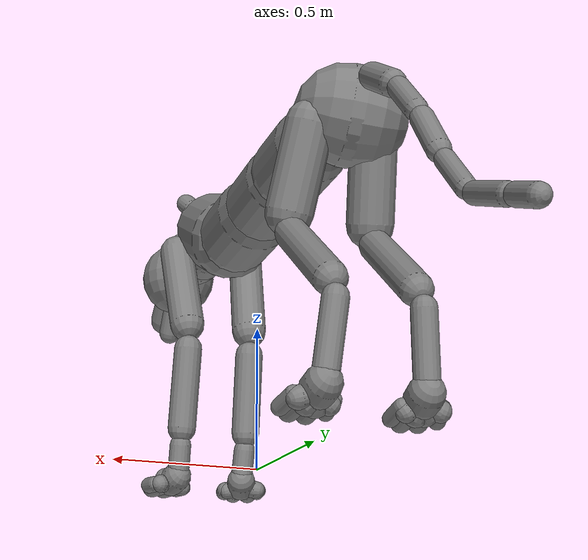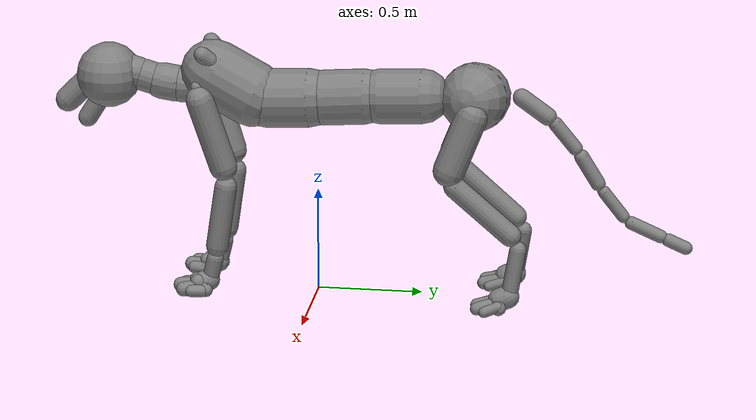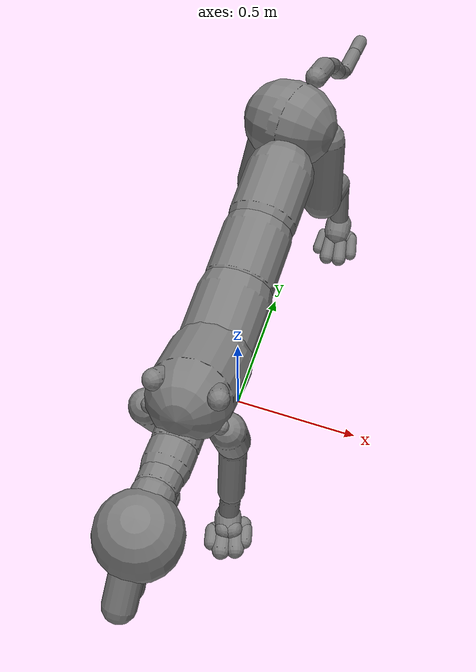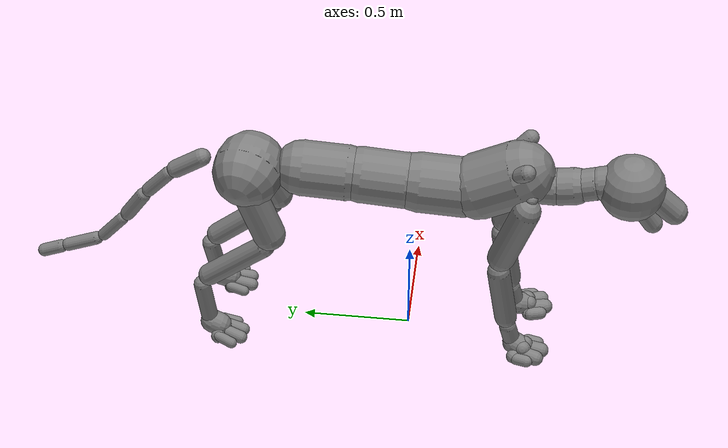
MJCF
<mujoco model="tiger">
  <compiler angle="radian" />
  <option timestep="0.016667" />
  <default>
    <joint limited="true" armature="0.202781" frictionloss="0.054979" />
    <geom type="capsule" density="1000.0" contype="1" conaffinity="1" friction="1.0 0.05 0.05" />
    <motor ctrllimited="true" />
  </default>
  <worldbody>
    <body name="RigPelvis" pos="-3.71397e-09 0.737232 0.989311">
      <freejoint name="root" />
      <geom name="g_RigPelvis" fromto="-0.012497 0.00273413 -0.00190671 -0.0520702 0.0113922 -0.00794469" size="0.163021" density="1540.0" />
      <body name="RigLBLeg1" pos="0.104141 0.0227845 -0.0158897">
        <joint name="RigLBLeg1_x" type="hinge" axis="1 0 0" pos="0 0 0" range="-1.1186 1.1823" />
        <joint name="RigLBLeg1_y" type="hinge" axis="0 1 0" pos="0 0 0" range="-0.4540 0.7477" />
        <joint name="RigLBLeg1_z" type="hinge" axis="0 0 1" pos="0 0 0" range="-0.4452 0.4915" />
        <geom name="g_RigLBLeg1" fromto="0.00450067 -0.0159535 -0.0412049 0.0330048 -0.116988 -0.302166" size="0.0766259" density="1540.0" />
        <body name="RigLBLeg2" pos="0.0375057 -0.132944 -0.343369">
          <joint name="RigLBLeg2_x" type="hinge" axis="1 0 0" pos="0 0 0" range="-0.6659 1.8467" />
          <joint name="RigLBLeg2_y" type="hinge" axis="0 1 0" pos="0 0 0" range="-0.1246 0.2644" />
          <joint name="RigLBLeg2_z" type="hinge" axis="0 0 1" pos="0 0 0" range="-0.1422 0.1201" />
          <geom name="g_RigLBLeg2" fromto="-0.00105493 0.04206 -0.0367531 -0.00773596 0.308443 -0.269521" size="0.0517676" density="1540.0" />
          <body name="RigLBLeg3" pos="-0.00879087 0.350499 -0.306273">
            <joint name="RigLBLeg3_x" type="hinge" axis="1 0 0" pos="0 0 0" range="-1.7965 0.5939" />
            <joint name="RigLBLeg3_y" type="hinge" axis="0 1 0" pos="0 0 0" range="-0.1506 0.2254" />
            <joint name="RigLBLeg3_z" type="hinge" axis="0 0 1" pos="0 0 0" range="-0.2989 0.1909" />
            <geom name="g_RigLBLeg3" fromto="0.00270917 -0.00503764 -0.0313317 0.0198671 -0.0369425 -0.229765" size="0.0399405" density="1540.0" />
            <body name="RigLBLegAnkle" pos="0.0225769 -0.0419799 -0.2611">
              <joint name="RigLBLegAnkle_x" type="hinge" axis="1 0 0" pos="0 0 0" range="-0.4182 2.2773" />
              <joint name="RigLBLegAnkle_y" type="hinge" axis="0 1 0" pos="0 0 0" range="-0.5642 0.5446" />
              <joint name="RigLBLegAnkle_z" type="hinge" axis="0 0 1" pos="0 0 0" range="-0.9221 1.0499" />
              <geom name="g_RigLBLegAnkle" fromto="0.000560647 -0.00601446 -0.00242466 0.00411145 -0.044106 -0.0177806" size="0.0554814" density="1540.0" />
              <body name="RigLBLegDigit11" pos="0.0046721 -0.0501207 -0.0202055">
                <joint name="RigLBLegDigit11_x" type="hinge" axis="1 0 0" pos="0 0 0" range="-1.2346 0.8098" />
                <joint name="RigLBLegDigit11_y" type="hinge" axis="0 1 0" pos="0 0 0" range="-0.3347 0.3448" />
                <joint name="RigLBLegDigit11_z" type="hinge" axis="0 0 1" pos="0 0 0" range="-0.4274 0.4434" />
                <geom name="g_RigLBLegDigit11" fromto="0 0 0 -0.0425535 -0.00753521 -0.0275245" size="0.0324687" density="1540.0" />
                <body name="RigLBLegDigit12" pos="-0.0555421 -0.00783834 -0.0133306">
                  <joint name="RigLBLegDigit12_x" type="hinge" axis="1 0 0" pos="0 0 0" range="-0.4513 1.3530" />
                  <joint name="RigLBLegDigit12_y" type="hinge" axis="0 1 0" pos="0 0 0" range="-0.2023 0.1290" />
                  <joint name="RigLBLegDigit12_z" type="hinge" axis="0 0 1" pos="0 0 0" range="-0.2549 0.1719" />
                  <geom name="g_RigLBLegDigit12" fromto="0 0 0 -0.0040532 -0.064185 -0.0215236" size="0.0248258" density="1540.0" />
                </body>
              </body>
              <body name="RigLBLegDigit21" pos="0.0046721 -0.0501199 -0.0202055">
                <joint name="RigLBLegDigit21_x" type="hinge" axis="1 0 0" pos="0 0 0" range="-1.2346 0.9774" />
                <joint name="RigLBLegDigit21_y" type="hinge" axis="0 1 0" pos="0 0 0" range="-0.2358 0.1890" />
                <joint name="RigLBLegDigit21_z" type="hinge" axis="0 0 1" pos="0 0 0" range="-0.4272 0.4171" />
                <geom name="g_RigLBLegDigit21" fromto="0 0 0 -0.00578945 -0.0190037 -0.0245509" size="0.0425664" density="1540.0" />
                <body name="RigLBLegDigit22" pos="-0.0180692 -0.025354 -0.0129026">
                  <joint name="RigLBLegDigit22_x" type="hinge" axis="1 0 0" pos="0 0 0" range="-0.4534 1.3547" />
                  <joint name="RigLBLegDigit22_y" type="hinge" axis="0 1 0" pos="0 0 0" range="-0.1014 0.1248" />
                  <joint name="RigLBLegDigit22_z" type="hinge" axis="0 0 1" pos="0 0 0" range="-0.1390 0.0873" />
                  <geom name="g_RigLBLegDigit22" fromto="0 0 0 0.00536271 -0.077672 -0.022251" size="0.0309904" density="1540.0" />
                </body>
              </body>
              <body name="RigLBLegDigit31" pos="0.0046721 -0.0501207 -0.0202055">
                <joint name="RigLBLegDigit31_x" type="hinge" axis="1 0 0" pos="0 0 0" range="-1.2346 0.8888" />
                <joint name="RigLBLegDigit31_y" type="hinge" axis="0 1 0" pos="0 0 0" range="-0.1873 0.4675" />
                <joint name="RigLBLegDigit31_z" type="hinge" axis="0 0 1" pos="0 0 0" range="-0.4282 0.4236" />
                <geom name="g_RigLBLegDigit31" fromto="0 0 0 0.0187042 -0.0158245 -0.0222241" size="0.0425943" density="1540.0" />
                <body name="RigLBLegDigit32" pos="0.0248476 -0.0240667 -0.0124635">
                  <joint name="RigLBLegDigit32_x" type="hinge" axis="1 0 0" pos="0 0 0" range="-0.4477 1.3498" />
                  <joint name="RigLBLegDigit32_y" type="hinge" axis="0 1 0" pos="0 0 0" range="-0.1543 0.2717" />
                  <joint name="RigLBLegDigit32_z" type="hinge" axis="0 0 1" pos="0 0 0" range="-0.2185 0.1205" />
                  <geom name="g_RigLBLegDigit32" fromto="0 0 0 0.0152426 -0.0742541 -0.0210748" size="0.0307951" density="1540.0" />
                </body>
              </body>
              <body name="RigLBLegDigit41" pos="0.00467202 -0.0501199 -0.0202055">
                <joint name="RigLBLegDigit41_x" type="hinge" axis="1 0 0" pos="0 0 0" range="-1.2346 0.7396" />
                <joint name="RigLBLegDigit41_y" type="hinge" axis="0 1 0" pos="0 0 0" range="-0.1873 0.4945" />
                <joint name="RigLBLegDigit41_z" type="hinge" axis="0 0 1" pos="0 0 0" range="-0.4282 0.4666" />
                <geom name="g_RigLBLegDigit41" fromto="0 0 0 0.0561866 0.00752917 -0.0207512" size="0.0340959" density="1540.0" />
                <body name="RigLBLegDigit42" pos="0.0658821 0.00318319 -0.0102848">
                  <joint name="RigLBLegDigit42_x" type="hinge" axis="1 0 0" pos="0 0 0" range="-0.4445 1.3470" />
                  <joint name="RigLBLegDigit42_y" type="hinge" axis="0 1 0" pos="0 0 0" range="-0.1704 0.3149" />
                  <joint name="RigLBLegDigit42_z" type="hinge" axis="0 0 1" pos="0 0 0" range="-0.2520 0.2513" />
                  <geom name="g_RigLBLegDigit42" fromto="0 0 0 0.0154778 -0.0625349 -0.023162" size="0.0257556" density="1540.0" />
                </body>
              </body>
            </body>
          </body>
        </body>
      </body>
      <body name="RigSpine1" pos="-4.10818e-14 -0.204483 6.56961e-08">
        <joint name="RigSpine1_x" type="hinge" axis="1 0 0" pos="0 0 0" range="-0.4792 0.4654" />
        <joint name="RigSpine1_y" type="hinge" axis="0 1 0" pos="0 0 0" range="-0.2512 0.2512" />
        <joint name="RigSpine1_z" type="hinge" axis="0 0 1" pos="0 0 0" range="-0.2732 0.3115" />
        <geom name="g_RigSpine1" fromto="-3.13256e-09 -0.0324054 -0.001533 -2.29722e-08 -0.237635 -0.0112424" size="0.130527" density="1540.0" />
        <body name="RigSpine2" pos="-2.6104e-08 -0.270047 -0.0127751">
          <joint name="RigSpine2_x" type="hinge" axis="1 0 0" pos="0 0 0" range="-0.3832 0.4203" />
          <joint name="RigSpine2_y" type="hinge" axis="0 1 0" pos="0 0 0" range="-0.3709 0.3709" />
          <joint name="RigSpine2_z" type="hinge" axis="0 0 1" pos="0 0 0" range="-0.3928 0.3904" />
          <geom name="g_RigSpine2" fromto="-2.03054e-09 -0.0323555 -0.00236482 -1.48908e-08 -0.237274 -0.0173424" size="0.13139" density="1000.0" />
          <body name="RigSpine3" pos="-1.69213e-08 -0.269624 -0.0197069">
            <joint name="RigSpine3_x" type="hinge" axis="1 0 0" pos="0 0 0" range="-0.2325 0.4305" />
            <joint name="RigSpine3_y" type="hinge" axis="0 1 0" pos="0 0 0" range="-0.3755 0.3755" />
            <joint name="RigSpine3_z" type="hinge" axis="0 0 1" pos="0 0 0" range="-0.4491 0.4485" />
            <geom name="g_RigSpine3" fromto="7.46807e-09 -0.0324054 -0.00153378 5.47654e-08 -0.237635 -0.0112476" size="0.140864" density="1000.0" />
            <body name="RigChest" pos="6.22336e-08 -0.270047 -0.012782">
              <joint name="RigChest_x" type="hinge" axis="1 0 0" pos="0 0 0" range="-0.3344 0.4872" />
              <joint name="RigChest_y" type="hinge" axis="0 1 0" pos="0 0 0" range="-0.2445 0.2445" />
              <joint name="RigChest_z" type="hinge" axis="0 0 1" pos="0 0 0" range="-0.3529 0.3529" />
              <geom name="g_RigChest" fromto="-1.76575e-10 -0.0301382 0.0164624 -1.29491e-09 -0.221008 0.120725" size="0.155617" density="1000.0" />
              <body name="RigNeck1" pos="-1.53739e-08 -0.294347 0.0522614">
                <joint name="RigNeck1_x" type="hinge" axis="1 0 0" pos="0 0 0" range="-0.6511 0.5810" />
                <joint name="RigNeck1_y" type="hinge" axis="0 1 0" pos="0 0 0" range="-0.1951 0.2132" />
                <joint name="RigNeck1_z" type="hinge" axis="0 0 1" pos="0 0 0" range="-0.4523 0.8165" />
                <geom name="g_RigNeck1" fromto="-2.93951e-08 -0.0111434 4.86388e-06 -2.15557e-07 -0.0817158 3.56681e-05" size="0.0867253" density="1000.0" />
                <body name="RigNeck2" pos="-2.44955e-07 -0.09286 4.05325e-05">
                  <joint name="RigNeck2_x" type="hinge" axis="1 0 0" pos="0 0 0" range="-0.3444 0.5429" />
                  <joint name="RigNeck2_y" type="hinge" axis="0 1 0" pos="0 0 0" range="-0.2646 0.2646" />
                  <joint name="RigNeck2_z" type="hinge" axis="0 0 1" pos="0 0 0" range="-0.3602 0.3770" />
                  <geom name="g_RigNeck2" fromto="-2.73181e-08 -0.0111167 0.00173338 -2.00333e-07 -0.0815255 0.0127114" size="0.0867253" density="1000.0" />
                  <body name="RigNeck3" pos="-2.27655e-07 -0.0926448 0.0144448">
                    <joint name="RigNeck3_x" type="hinge" axis="1 0 0" pos="0 0 0" range="-0.3421 0.4979" />
                    <joint name="RigNeck3_y" type="hinge" axis="0 1 0" pos="0 0 0" range="-0.2145 0.2145" />
                    <joint name="RigNeck3_z" type="hinge" axis="0 0 1" pos="0 0 0" range="-0.2979 0.2867" />
                    <geom name="g_RigNeck3" fromto="-2.63812e-08 -0.0113104 0.00322582 -1.93461e-07 -0.0829403 0.0236559" size="0.0761227" density="1000.0" />
                    <body name="RigNeck4" pos="-2.19846e-07 -0.0942467 0.0268816">
                      <joint name="RigNeck4_x" type="hinge" axis="1 0 0" pos="0 0 0" range="-0.7504 0.5229" />
                      <joint name="RigNeck4_y" type="hinge" axis="0 1 0" pos="0 0 0" range="-0.3846 0.3846" />
                      <joint name="RigNeck4_z" type="hinge" axis="0 0 1" pos="0 0 0" range="-0.4534 0.4534" />
                      <geom name="g_RigNeck4" fromto="3.32665e-07 -0.00992668 0.00276988 2.43955e-06 -0.0727932 0.0203123" size="0.0774232" density="1000.0" />
                      <body name="RigHead" pos="2.7722e-06 -0.0827199 0.0230824">
                        <joint name="RigHead_x" type="hinge" axis="1 0 0" pos="0 0 0" range="-0.8230 0.5439" />
                        <joint name="RigHead_y" type="hinge" axis="0 1 0" pos="0 0 0" range="-0.3970 0.3970" />
                        <joint name="RigHead_z" type="hinge" axis="0 0 1" pos="0 0 0" range="-0.5157 0.5157" />
                        <geom name="g_RigHead" type="sphere" pos="-2.07987e-06 -0.0685405 -0.0323949" size="0.155221" density="838.9" />
                        <geom name="g_RigHead_snout" fromto="-2.07987e-06 -0.102943 0.00386742 -2.07987e-06 -0.27134 -0.164529" size="0.0604372" density="838.9" />
                        <body name="RigJaw1" pos="-2.72071e-08 -0.0387069 -0.0701419">
                          <joint name="RigJaw1_x" type="hinge" axis="1 0 0" pos="0 0 0" range="-0.4014 0.6986" />
                          <joint name="RigJaw1_y" type="hinge" axis="0 1 0" pos="0 0 0" range="-0.1388 0.1388" />
                          <joint name="RigJaw1_z" type="hinge" axis="0 0 1" pos="0 0 0" range="-0.1091 0.1091" />
                          <geom name="g_RigJaw1" fromto="-2.05266e-06 -0.0642367 -0.0608122 -2.05266e-06 -0.138701 -0.179979" size="0.0464902" density="838.9" />
                        </body>
                      </body>
                    </body>
                  </body>
                </body>
              </body>
              <body name="RigLFLegCollarbone" pos="-0.0347003 -0.277805 0.126769">
                <joint name="RigLFLegCollarbone_x" type="hinge" axis="1 0 0" pos="0 0 0" range="-0.2925 0.2681" />
                <joint name="RigLFLegCollarbone_y" type="hinge" axis="0 1 0" pos="0 0 0" range="-0.2371 0.6865" />
                <joint name="RigLFLegCollarbone_z" type="hinge" axis="0 0 1" pos="0 0 0" range="-0.4193 0.3521" />
                <geom name="g_RigLFLegCollarbone" fromto="0.022087 6.21148e-06 -0.00618755 0.161971 4.55509e-05 -0.0453752" size="0.0297135" density="1000.5" />
                <body name="RigLFLeg1" pos="0.184058 5.17627e-05 -0.051563">
                  <joint name="RigLFLeg1_x" type="hinge" axis="1 0 0" pos="0 0 0" range="-0.6847 0.9281" />
                  <joint name="RigLFLeg1_y" type="hinge" axis="0 1 0" pos="0 0 0" range="-0.8833 0.4380" />
                  <joint name="RigLFLeg1_z" type="hinge" axis="0 0 1" pos="0 0 0" range="-0.5692 0.5046" />
                  <geom name="g_RigLFLeg1" fromto="-0.00311543 0.0165338 -0.0525524 -0.0228465 0.12125 -0.385381" size="0.0660645" density="1000.5" />
                  <body name="RigLFLeg2" pos="-0.0259619 0.137783 -0.437934">
                    <joint name="RigLFLeg2_x" type="hinge" axis="1 0 0" pos="0 0 0" range="-1.9085 0.4150" />
                    <joint name="RigLFLeg2_y" type="hinge" axis="0 1 0" pos="0 0 0" range="-0.2753 0.1353" />
                    <joint name="RigLFLeg2_z" type="hinge" axis="0 0 1" pos="0 0 0" range="-0.2342 0.1285" />
                    <geom name="g_RigLFLeg2" fromto="0.000570525 -0.00708669 -0.04754 0.00418386 -0.0519686 -0.34863" size="0.0533189" density="1000.5" />
                    <body name="RigLFLeg3" pos="0.00475435 -0.0590554 -0.396171">
                      <joint name="RigLFLeg3_x" type="hinge" axis="1 0 0" pos="0 0 0" range="-0.3454 2.3444" />
                      <joint name="RigLFLeg3_y" type="hinge" axis="0 1 0" pos="0 0 0" range="-0.2482 0.8543" />
                      <joint name="RigLFLeg3_z" type="hinge" axis="0 0 1" pos="0 0 0" range="-0.3979 0.8034" />
                      <geom name="g_RigLFLeg3" fromto="-0.000264398 -0.00367686 -0.0150734 -0.00193892 -0.0269634 -0.110538" size="0.0404029" density="1000.5" />
                      <body name="RigLFLegAnkle" pos="-0.00220336 -0.0306402 -0.125607">
                        <joint name="RigLFLegAnkle_x" type="hinge" axis="1 0 0" pos="0 0 0" range="-0.3116 2.0357" />
                        <joint name="RigLFLegAnkle_y" type="hinge" axis="0 1 0" pos="0 0 0" range="-0.4435 1.0126" />
                        <joint name="RigLFLegAnkle_z" type="hinge" axis="0 0 1" pos="0 0 0" range="-0.8155 0.7421" />
                        <geom name="g_RigLFLegAnkle" fromto="0.00196544 -0.00590071 -0.00230652 0.0144138 -0.0432724 -0.0169144" size="0.0529802" density="1000.5" />
                        <body name="RigLFLegDigit11" pos="0.0163788 -0.0491726 -0.0192196">
                          <joint name="RigLFLegDigit11_x" type="hinge" axis="1 0 0" pos="0 0 0" range="-1.8232 0.4278" />
                          <joint name="RigLFLegDigit11_y" type="hinge" axis="0 1 0" pos="0 0 0" range="-0.6347 0.5256" />
                          <joint name="RigLFLegDigit11_z" type="hinge" axis="0 0 1" pos="0 0 0" range="-0.4580 0.1848" />
                          <geom name="g_RigLFLegDigit11" fromto="0 0 0 -0.0507717 -0.0140045 -0.0140357" size="0.0310182" density="1000.5" />
                          <body name="RigLFLegDigit12" pos="-0.0560544 -0.0222669 -0.0107197">
                            <joint name="RigLFLegDigit12_x" type="hinge" axis="1 0 0" pos="0 0 0" range="-0.3822 2.8648" />
                            <joint name="RigLFLegDigit12_y" type="hinge" axis="0 1 0" pos="0 0 0" range="-0.3298 0.7237" />
                            <joint name="RigLFLegDigit12_z" type="hinge" axis="0 0 1" pos="0 0 0" range="-0.5305 0.4206" />
                            <geom name="g_RigLFLegDigit12" fromto="0 0 0 0.0113395 -0.0476826 0.000772613" size="0.0308695" density="1000.5" />
                          </body>
                        </body>
                        <body name="RigLFLegDigit21" pos="0.0163788 -0.0491726 -0.0192196">
                          <joint name="RigLFLegDigit21_x" type="hinge" axis="1 0 0" pos="0 0 0" range="-1.8151 0.4265" />
                          <joint name="RigLFLegDigit21_y" type="hinge" axis="0 1 0" pos="0 0 0" range="-0.5857 0.1982" />
                          <joint name="RigLFLegDigit21_z" type="hinge" axis="0 0 1" pos="0 0 0" range="-0.4576 0.1594" />
                          <geom name="g_RigLFLegDigit21" fromto="0 0 0 -0.0101205 -0.0102738 0.0141711" size="0.039247" density="1000.5" />
                          <body name="RigLFLegDigit22" pos="-0.0139428 -0.0234019 -0.00987414">
                            <joint name="RigLFLegDigit22_x" type="hinge" axis="1 0 0" pos="0 0 0" range="-0.3980 2.8730" />
                            <joint name="RigLFLegDigit22_y" type="hinge" axis="0 1 0" pos="0 0 0" range="-0.1984 0.6366" />
                            <joint name="RigLFLegDigit22_z" type="hinge" axis="0 0 1" pos="0 0 0" range="-0.5772 0.2824" />
                            <geom name="g_RigLFLegDigit22" fromto="0 0 0 0.0135018 -0.066047 0.000842824" size="0.0363274" density="1000.5" />
                          </body>
                        </body>
                        <body name="RigLFLegDigit31" pos="0.0163797 -0.0491726 -0.0192239">
                          <joint name="RigLFLegDigit31_x" type="hinge" axis="1 0 0" pos="0 0 0" range="-1.8151 0.4265" />
                          <joint name="RigLFLegDigit31_y" type="hinge" axis="0 1 0" pos="0 0 0" range="-0.4083 0.1982" />
                          <joint name="RigLFLegDigit31_z" type="hinge" axis="0 0 1" pos="0 0 0" range="-0.4589 0.1594" />
                          <geom name="g_RigLFLegDigit31" fromto="0 0 0 0.0166381 -0.00115699 0.0135998" size="0.0408463" density="1000.5" />
                          <body name="RigLFLegDigit32" pos="0.0307556 -0.00640126 -0.0100756">
                            <joint name="RigLFLegDigit32_x" type="hinge" axis="1 0 0" pos="0 0 0" range="-0.3736 2.8802" />
                            <joint name="RigLFLegDigit32_y" type="hinge" axis="0 1 0" pos="0 0 0" range="-0.1601 0.7878" />
                            <joint name="RigLFLegDigit32_z" type="hinge" axis="0 0 1" pos="0 0 0" range="-0.7127 0.2741" />
                            <geom name="g_RigLFLegDigit32" fromto="0 0 0 0.0201025 -0.0608005 -0.00113838" size="0.0363553" density="1000.5" />
                          </body>
                        </body>
                        <body name="RigLFLegDigit41" pos="0.0163788 -0.0491726 -0.0192196">
                          <joint name="RigLFLegDigit41_x" type="hinge" axis="1 0 0" pos="0 0 0" range="-1.8203 0.4265" />
                          <joint name="RigLFLegDigit41_y" type="hinge" axis="0 1 0" pos="0 0 0" range="-0.4083 0.1982" />
                          <joint name="RigLFLegDigit41_z" type="hinge" axis="0 0 1" pos="0 0 0" range="-0.4620 0.1594" />
                          <geom name="g_RigLFLegDigit41" fromto="0 0 0 0.0489029 0.0399905 -0.0131114" size="0.0325989" density="1000.5" />
                          <body name="RigLFLegDigit42" pos="0.0623284 0.0232925 -0.0126951">
                            <joint name="RigLFLegDigit42_x" type="hinge" axis="1 0 0" pos="0 0 0" range="-0.3282 2.8916" />
                            <joint name="RigLFLegDigit42_y" type="hinge" axis="0 1 0" pos="0 0 0" range="-0.1784 0.8231" />
                            <joint name="RigLFLegDigit42_z" type="hinge" axis="0 0 1" pos="0 0 0" range="-0.9001 0.2935" />
                            <geom name="g_RigLFLegDigit42" fromto="0 0 0 0.0124786 -0.0487053 0.00214576" size="0.0296328" density="1000.5" />
                          </body>
                        </body>
                      </body>
                    </body>
                  </body>
                </body>
              </body>
              <body name="RigRFLegCollarbone" pos="0.0347011 -0.277805 0.126769">
                <joint name="RigRFLegCollarbone_x" type="hinge" axis="1 0 0" pos="0 0 0" range="-0.2925 0.2681" />
                <joint name="RigRFLegCollarbone_y" type="hinge" axis="0 1 0" pos="0 0 0" range="-0.6865 0.2371" />
                <joint name="RigRFLegCollarbone_z" type="hinge" axis="0 0 1" pos="0 0 0" range="-0.3521 0.4193" />
                <geom name="g_RigRFLegCollarbone" fromto="-0.022087 6.18134e-06 -0.00618728 -0.161971 4.53304e-05 -0.0453735" size="0.0297135" density="1000.5" />
                <body name="RigRFLeg1" pos="-0.184058 5.15113e-05 -0.0515612">
                  <joint name="RigRFLeg1_x" type="hinge" axis="1 0 0" pos="0 0 0" range="-0.6847 0.9281" />
                  <joint name="RigRFLeg1_y" type="hinge" axis="0 1 0" pos="0 0 0" range="-0.4380 0.8833" />
                  <joint name="RigRFLeg1_z" type="hinge" axis="0 0 1" pos="0 0 0" range="-0.5046 0.5692" />
                  <geom name="g_RigRFLeg1" fromto="0.0030896 0.0165373 -0.0525524 0.022657 0.121276 -0.385381" size="0.0660829" density="1000.5" />
                  <body name="RigRFLeg2" pos="0.0257466 0.137809 -0.437934">
                    <joint name="RigRFLeg2_x" type="hinge" axis="1 0 0" pos="0 0 0" range="-1.9085 0.4150" />
                    <joint name="RigRFLeg2_y" type="hinge" axis="0 1 0" pos="0 0 0" range="-0.1353 0.2753" />
                    <joint name="RigRFLeg2_z" type="hinge" axis="0 0 1" pos="0 0 0" range="-0.1285 0.2342" />
                    <geom name="g_RigRFLeg2" fromto="-0.000551692 -0.0070891 -0.04754 -0.00404575 -0.0519866 -0.34863" size="0.0533189" density="1000.5" />
                    <body name="RigRFLeg3" pos="-0.00459745 -0.059076 -0.396162">
                      <joint name="RigRFLeg3_x" type="hinge" axis="1 0 0" pos="0 0 0" range="-0.3622 2.3392" />
                      <joint name="RigRFLeg3_y" type="hinge" axis="0 1 0" pos="0 0 0" range="-0.8543 0.2375" />
                      <joint name="RigRFLeg3_z" type="hinge" axis="0 0 1" pos="0 0 0" range="-0.8253 0.4073" />
                      <geom name="g_RigRFLeg3" fromto="0.00027585 -0.00367884 -0.0150726 0.00202287 -0.026978 -0.110529" size="0.0403968" density="1000.5" />
                      <body name="RigRFLegAnkle" pos="0.00229877 -0.0306566 -0.125599">
                        <joint name="RigRFLegAnkle_x" type="hinge" axis="1 0 0" pos="0 0 0" range="-0.3116 2.0267" />
                        <joint name="RigRFLegAnkle_y" type="hinge" axis="0 1 0" pos="0 0 0" range="-0.9493 0.4306" />
                        <joint name="RigRFLegAnkle_z" type="hinge" axis="0 0 1" pos="0 0 0" range="-0.7768 0.8115" />
                        <geom name="g_RigRFLegAnkle" fromto="-0.00196759 -0.00589994 -0.00230669 -0.0144293 -0.0432664 -0.0169153" size="0.0529895" density="1000.5" />
                        <body name="RigRFLegDigit11" pos="-0.0163969 -0.0491666 -0.0192213">
                          <joint name="RigRFLegDigit11_x" type="hinge" axis="1 0 0" pos="0 0 0" range="-1.8232 0.4278" />
                          <joint name="RigRFLegDigit11_y" type="hinge" axis="0 1 0" pos="0 0 0" range="-0.5256 0.6346" />
                          <joint name="RigRFLegDigit11_z" type="hinge" axis="0 0 1" pos="0 0 0" range="-0.1848 0.4580" />
                          <geom name="g_RigRFLegDigit11" fromto="0 0 0 0.0507177 -0.0139983 -0.0140286" size="0.0310275" density="1000.5" />
                          <body name="RigRFLegDigit12" pos="0.0560544 -0.0222669 -0.0107197">
                            <joint name="RigRFLegDigit12_x" type="hinge" axis="1 0 0" pos="0 0 0" range="-0.3752 2.8290" />
                            <joint name="RigRFLegDigit12_y" type="hinge" axis="0 1 0" pos="0 0 0" range="-0.7024 0.3298" />
                            <joint name="RigRFLegDigit12_z" type="hinge" axis="0 0 1" pos="0 0 0" range="-0.3150 0.5212" />
                            <geom name="g_RigRFLegDigit12" fromto="0 0 0 -0.0113653 -0.0476915 0.000754398" size="0.0308602" density="1000.5" />
                          </body>
                        </body>
                        <body name="RigRFLegDigit21" pos="-0.0163969 -0.0491666 -0.0192213">
                          <joint name="RigRFLegDigit21_x" type="hinge" axis="1 0 0" pos="0 0 0" range="-1.8151 0.4261" />
                          <joint name="RigRFLegDigit21_y" type="hinge" axis="0 1 0" pos="0 0 0" range="-0.1980 0.5856" />
                          <joint name="RigRFLegDigit21_z" type="hinge" axis="0 0 1" pos="0 0 0" range="-0.1594 0.4576" />
                          <geom name="g_RigRFLegDigit21" fromto="0 0 0 0.010102 -0.0102739 0.0141552" size="0.0392377" density="1000.5" />
                          <body name="RigRFLegDigit22" pos="0.0139428 -0.0234019 -0.00987414">
                            <joint name="RigRFLegDigit22_x" type="hinge" axis="1 0 0" pos="0 0 0" range="-0.3075 2.8406" />
                            <joint name="RigRFLegDigit22_y" type="hinge" axis="0 1 0" pos="0 0 0" range="-0.6231 0.1982" />
                            <joint name="RigRFLegDigit22_z" type="hinge" axis="0 0 1" pos="0 0 0" range="-0.2690 0.5772" />
                            <geom name="g_RigRFLegDigit22" fromto="0 0 0 -0.013506 -0.0660451 0.000845787" size="0.0363181" density="1000.5" />
                          </body>
                        </body>
                        <body name="RigRFLegDigit31" pos="-0.0163969 -0.0491666 -0.0192255">
                          <joint name="RigRFLegDigit31_x" type="hinge" axis="1 0 0" pos="0 0 0" range="-1.8151 0.4261" />
                          <joint name="RigRFLegDigit31_y" type="hinge" axis="0 1 0" pos="0 0 0" range="-0.1980 0.4091" />
                          <joint name="RigRFLegDigit31_z" type="hinge" axis="0 0 1" pos="0 0 0" range="-0.1594 0.4589" />
                          <geom name="g_RigRFLegDigit31" fromto="0 0 0 -0.0166511 -0.00114627 0.013603" size="0.0408556" density="1000.5" />
                          <body name="RigRFLegDigit32" pos="-0.0307556 -0.00640126 -0.0100756">
                            <joint name="RigRFLegDigit32_x" type="hinge" axis="1 0 0" pos="0 0 0" range="-0.3115 2.8429" />
                            <joint name="RigRFLegDigit32_y" type="hinge" axis="0 1 0" pos="0 0 0" range="-0.7734 0.1653" />
                            <joint name="RigRFLegDigit32_z" type="hinge" axis="0 0 1" pos="0 0 0" range="-0.2705 0.7127" />
                            <geom name="g_RigRFLegDigit32" fromto="0 0 0 -0.0201238 -0.0608079 -0.00114573" size="0.0363367" density="1000.5" />
                          </body>
                        </body>
                        <body name="RigRFLegDigit41" pos="-0.0163969 -0.0491666 -0.0192213">
                          <joint name="RigRFLegDigit41_x" type="hinge" axis="1 0 0" pos="0 0 0" range="-1.8203 0.4261" />
                          <joint name="RigRFLegDigit41_y" type="hinge" axis="0 1 0" pos="0 0 0" range="-0.1980 0.4091" />
                          <joint name="RigRFLegDigit41_z" type="hinge" axis="0 0 1" pos="0 0 0" range="-0.1594 0.4613" />
                          <geom name="g_RigRFLegDigit41" fromto="0 0 0 -0.0489655 0.0400147 -0.0131394" size="0.0325989" density="1000.5" />
                          <body name="RigRFLegDigit42" pos="-0.0623284 0.0232925 -0.0126951">
                            <joint name="RigRFLegDigit42_x" type="hinge" axis="1 0 0" pos="0 0 0" range="-0.3282 2.8430" />
                            <joint name="RigRFLegDigit42_y" type="hinge" axis="0 1 0" pos="0 0 0" range="-0.8099 0.1769" />
                            <joint name="RigRFLegDigit42_z" type="hinge" axis="0 0 1" pos="0 0 0" range="-0.2779 0.8978" />
                            <geom name="g_RigRFLegDigit42" fromto="0 0 0 -0.012494 -0.0487331 0.0021439" size="0.0296235" density="1000.5" />
                          </body>
                        </body>
                      </body>
                    </body>
                  </body>
                </body>
              </body>
              <body name="RigLShoulderBlade1" pos="-0.09224 -0.202891 0.190069">
                <joint name="RigLShoulderBlade1_x" type="hinge" axis="1 0 0" pos="0 0 0" range="-0.2891 0.1272" />
                <joint name="RigLShoulderBlade1_y" type="hinge" axis="0 1 0" pos="0 0 0" range="-0.3652 0.3652" />
                <joint name="RigLShoulderBlade1_z" type="hinge" axis="0 0 1" pos="0 0 0" range="-0.2868 0.2868" />
                <geom name="g_RigLShoulderBlade1" fromto="-0.0066416 -0.0146084 0.0136845 -0.0223969 -0.0492628 0.0461465" size="0.038663" density="1000.0" />
              </body>
              <body name="RigRShoulderBlade1" pos="0.09224 -0.202891 0.190069">
                <joint name="RigRShoulderBlade1_x" type="hinge" axis="1 0 0" pos="0 0 0" range="-0.2891 0.1272" />
                <joint name="RigRShoulderBlade1_y" type="hinge" axis="0 1 0" pos="0 0 0" range="-0.3652 0.3652" />
                <joint name="RigRShoulderBlade1_z" type="hinge" axis="0 0 1" pos="0 0 0" range="-0.2868 0.2868" />
                <geom name="g_RigRShoulderBlade1" fromto="0.0066416 -0.0146084 0.0136845 0.0223969 -0.0492628 0.0461465" size="0.038663" density="1000.0" />
              </body>
            </body>
          </body>
        </body>
      </body>
      <body name="RigTail1" pos="-2.98816e-08 0.209323 0.0280113">
        <joint name="RigTail1_x" type="hinge" axis="1 0 0" pos="0 0 0" range="-0.6451 1.6456" />
        <joint name="RigTail1_y" type="hinge" axis="0 1 0" pos="0 0 0" range="-0.3564 0.3564" />
        <joint name="RigTail1_z" type="hinge" axis="0 0 1" pos="0 0 0" range="-0.5003 0.5003" />
        <geom name="g_RigTail1" fromto="-9.18095e-10 0.0197302 -0.0140547 -6.73296e-09 0.14469 -0.103064" size="0.0420468" density="1600.0" />
        <body name="RigTail2" pos="-7.65106e-09 0.164417 -0.117125">
          <joint name="RigTail2_x" type="hinge" axis="1 0 0" pos="0 0 0" range="-0.3604 1.0488" />
          <joint name="RigTail2_y" type="hinge" axis="0 1 0" pos="0 0 0" range="-0.3353 0.3353" />
          <joint name="RigTail2_z" type="hinge" axis="0 0 1" pos="0 0 0" range="-0.4529 0.4529" />
          <geom name="g_RigTail2" fromto="4.39906e-10 0.0154756 -0.0186409 3.22599e-09 0.113483 -0.136698" size="0.0333576" density="1600.0" />
          <body name="RigTail3" pos="3.66593e-09 0.128957 -0.15534">
            <joint name="RigTail3_x" type="hinge" axis="1 0 0" pos="0 0 0" range="-0.2370 0.6886" />
            <joint name="RigTail3_y" type="hinge" axis="0 1 0" pos="0 0 0" range="-0.4456 0.4456" />
            <joint name="RigTail3_z" type="hinge" axis="0 0 1" pos="0 0 0" range="-0.4701 0.4701" />
            <geom name="g_RigTail3" fromto="9.56154e-10 0.0127709 -0.0205663 7.01204e-09 0.0936526 -0.15082" size="0.0347503" density="1600.0" />
            <body name="RigTail4" pos="7.96819e-09 0.106423 -0.171383">
              <joint name="RigTail4_x" type="hinge" axis="1 0 0" pos="0 0 0" range="-0.6646 0.8378" />
              <joint name="RigTail4_y" type="hinge" axis="0 1 0" pos="0 0 0" range="-0.6990 0.6990" />
              <joint name="RigTail4_z" type="hinge" axis="0 0 1" pos="0 0 0" range="-0.5716 0.5716" />
              <geom name="g_RigTail4" fromto="7.45257e-10 0.0150665 -0.0189414 5.46526e-09 0.110487 -0.138902" size="0.0292929" density="1600.0" />
              <body name="RigTail5" pos="6.21045e-09 0.125556 -0.157838">
                <joint name="RigTail5_x" type="hinge" axis="1 0 0" pos="0 0 0" range="-1.1145 0.7134" />
                <joint name="RigTail5_y" type="hinge" axis="0 1 0" pos="0 0 0" range="-0.6500 0.6500" />
                <joint name="RigTail5_z" type="hinge" axis="0 0 1" pos="0 0 0" range="-1.0708 1.0708" />
                <geom name="g_RigTail5" fromto="-3.8725e-09 0.0221955 -0.00965108 -2.8398e-08 0.162763 -0.0707722" size="0.031252" density="1600.0" />
                <body name="RigTail6" pos="-3.22711e-08 0.184962 -0.0804224">
                  <joint name="RigTail6_x" type="hinge" axis="1 0 0" pos="0 0 0" range="-1.1830 1.1045" />
                  <joint name="RigTail6_y" type="hinge" axis="0 1 0" pos="0 0 0" range="-0.5133 0.5133" />
                  <joint name="RigTail6_z" type="hinge" axis="0 0 1" pos="0 0 0" range="-1.2501 1.2501" />
                  <geom name="g_RigTail6" fromto="-2.32349e-09 0.0133167 -0.00579041 -1.70393e-08 0.0976563 -0.042463" size="0.031072" density="1600.0" />
                </body>
              </body>
            </body>
          </body>
        </body>
      </body>
      <body name="RigRBLeg1" pos="-0.104141 0.0227845 -0.0158897">
        <joint name="RigRBLeg1_x" type="hinge" axis="1 0 0" pos="0 0 0" range="-1.1061 1.1675" />
        <joint name="RigRBLeg1_y" type="hinge" axis="0 1 0" pos="0 0 0" range="-0.7477 0.5943" />
        <joint name="RigRBLeg1_z" type="hinge" axis="0 0 1" pos="0 0 0" range="-0.4273 0.4452" />
        <geom name="g_RigRBLeg1" fromto="-0.00450247 -0.0159535 -0.0412041 -0.0330185 -0.116996 -0.302166" size="0.0765228" density="1540.0" />
        <body name="RigRBLeg2" pos="-0.0375204 -0.132944 -0.343369">
          <joint name="RigRBLeg2_x" type="hinge" axis="1 0 0" pos="0 0 0" range="-0.7214 1.8467" />
          <joint name="RigRBLeg2_y" type="hinge" axis="0 1 0" pos="0 0 0" range="-0.2644 0.1263" />
          <joint name="RigRBLeg2_z" type="hinge" axis="0 0 1" pos="0 0 0" range="-0.1185 0.1485" />
          <geom name="g_RigRBLeg2" fromto="0.00105655 0.04206 -0.0367523 0.00774827 0.308443 -0.269513" size="0.0517736" density="1540.0" />
          <body name="RigRBLeg3" pos="0.00880465 0.350507 -0.306273">
            <joint name="RigRBLeg3_x" type="hinge" axis="1 0 0" pos="0 0 0" range="-1.7965 0.6084" />
            <joint name="RigRBLeg3_y" type="hinge" axis="0 1 0" pos="0 0 0" range="-0.2235 0.1506" />
            <joint name="RigRBLeg3_z" type="hinge" axis="0 0 1" pos="0 0 0" range="-0.1989 0.2990" />
            <geom name="g_RigRBLeg3" fromto="-0.0027096 -0.00503782 -0.0313317 -0.0198706 -0.0369443 -0.229765" size="0.0399405" density="1540.0" />
            <body name="RigRBLegAnkle" pos="-0.0225795 -0.0419817 -0.2611">
              <joint name="RigRBLegAnkle_x" type="hinge" axis="1 0 0" pos="0 0 0" range="-0.4603 2.4599" />
              <joint name="RigRBLegAnkle_y" type="hinge" axis="0 1 0" pos="0 0 0" range="-0.7567 0.5560" />
              <joint name="RigRBLegAnkle_z" type="hinge" axis="0 0 1" pos="0 0 0" range="-0.8161 0.9221" />
              <geom name="g_RigRBLegAnkle" fromto="-0.000563739 -0.00601395 -0.00242526 -0.0041341 -0.0441016 -0.017785" size="0.0554814" density="1540.0" />
              <body name="RigRBLegDigit11" pos="-0.00469785 -0.0501155 -0.0202107">
                <joint name="RigRBLegDigit11_x" type="hinge" axis="1 0 0" pos="0 0 0" range="-1.2345 0.8098" />
                <joint name="RigRBLegDigit11_y" type="hinge" axis="0 1 0" pos="0 0 0" range="-0.3448 0.3285" />
                <joint name="RigRBLegDigit11_z" type="hinge" axis="0 0 1" pos="0 0 0" range="-0.4484 0.3941" />
                <geom name="g_RigRBLegDigit11" fromto="0 0 0 0.04257 -0.00752517 -0.0275217" size="0.0324687" density="1540.0" />
                <body name="RigRBLegDigit12" pos="0.0555421 -0.00783825 -0.0133306">
                  <joint name="RigRBLegDigit12_x" type="hinge" axis="1 0 0" pos="0 0 0" range="-0.4450 1.3206" />
                  <joint name="RigRBLegDigit12_y" type="hinge" axis="0 1 0" pos="0 0 0" range="-0.1290 0.2012" />
                  <joint name="RigRBLegDigit12_z" type="hinge" axis="0 0 1" pos="0 0 0" range="-0.1653 0.2549" />
                  <geom name="g_RigRBLegDigit12" fromto="0 0 0 0.00407485 -0.064187 -0.0215252" size="0.0248258" density="1540.0" />
                </body>
              </body>
              <body name="RigRBLegDigit21" pos="-0.00469785 -0.0501155 -0.0202107">
                <joint name="RigRBLegDigit21_x" type="hinge" axis="1 0 0" pos="0 0 0" range="-1.2345 0.9774" />
                <joint name="RigRBLegDigit21_y" type="hinge" axis="0 1 0" pos="0 0 0" range="-0.1890 0.2212" />
                <joint name="RigRBLegDigit21_z" type="hinge" axis="0 0 1" pos="0 0 0" range="-0.4150 0.3926" />
                <geom name="g_RigRBLegDigit21" fromto="0 0 0 0.00580044 -0.0189996 -0.0245474" size="0.0425664" density="1540.0" />
                <body name="RigRBLegDigit22" pos="0.0180692 -0.025354 -0.0129026">
                  <joint name="RigRBLegDigit22_x" type="hinge" axis="1 0 0" pos="0 0 0" range="-0.4474 1.3224" />
                  <joint name="RigRBLegDigit22_y" type="hinge" axis="0 1 0" pos="0 0 0" range="-0.1244 0.1012" />
                  <joint name="RigRBLegDigit22_z" type="hinge" axis="0 0 1" pos="0 0 0" range="-0.0873 0.1390" />
                  <geom name="g_RigRBLegDigit22" fromto="0 0 0 -0.0053411 -0.077673 -0.0222525" size="0.0309904" density="1540.0" />
                </body>
              </body>
              <body name="RigRBLegDigit31" pos="-0.00469777 -0.0501155 -0.0202107">
                <joint name="RigRBLegDigit31_x" type="hinge" axis="1 0 0" pos="0 0 0" range="-1.2345 0.8888" />
                <joint name="RigRBLegDigit31_y" type="hinge" axis="0 1 0" pos="0 0 0" range="-0.4526 0.1834" />
                <joint name="RigRBLegDigit31_z" type="hinge" axis="0 0 1" pos="0 0 0" range="-0.4163 0.3961" />
                <geom name="g_RigRBLegDigit31" fromto="0 0 0 -0.0186915 -0.0158291 -0.0222334" size="0.042585" density="1540.0" />
                <body name="RigRBLegDigit32" pos="-0.0248476 -0.0240667 -0.0124635">
                  <joint name="RigRBLegDigit32_x" type="hinge" axis="1 0 0" pos="0 0 0" range="-0.4419 1.3171" />
                  <joint name="RigRBLegDigit32_y" type="hinge" axis="0 1 0" pos="0 0 0" range="-0.2663 0.1534" />
                  <joint name="RigRBLegDigit32_z" type="hinge" axis="0 0 1" pos="0 0 0" range="-0.1205 0.2127" />
                  <geom name="g_RigRBLegDigit32" fromto="0 0 0 -0.0152224 -0.0742629 -0.0210784" size="0.0307858" density="1540.0" />
                </body>
              </body>
              <body name="RigRBLegDigit41" pos="-0.00469777 -0.0501163 -0.0202098">
                <joint name="RigRBLegDigit41_x" type="hinge" axis="1 0 0" pos="0 0 0" range="-1.2345 0.7396" />
                <joint name="RigRBLegDigit41_y" type="hinge" axis="0 1 0" pos="0 0 0" range="-0.4941 0.1833" />
                <joint name="RigRBLegDigit41_z" type="hinge" axis="0 0 1" pos="0 0 0" range="-0.4753 0.3962" />
                <geom name="g_RigRBLegDigit41" fromto="0 0 0 -0.0561473 0.00751661 -0.0207452" size="0.0340959" density="1540.0" />
                <body name="RigRBLegDigit42" pos="-0.0658821 0.00318302 -0.0102848">
                  <joint name="RigRBLegDigit42_x" type="hinge" axis="1 0 0" pos="0 0 0" range="-0.4390 1.3140" />
                  <joint name="RigRBLegDigit42_y" type="hinge" axis="0 1 0" pos="0 0 0" range="-0.3078 0.1702" />
                  <joint name="RigRBLegDigit42_z" type="hinge" axis="0 0 1" pos="0 0 0" range="-0.2513 0.2429" />
                  <geom name="g_RigRBLegDigit42" fromto="0 0 0 -0.0154553 -0.0625344 -0.0231628" size="0.0257556" density="1540.0" />
                </body>
              </body>
            </body>
          </body>
        </body>
      </body>
    </body>
  </worldbody>
  <actuator>
    <motor name="m_RigLBLeg1_x" joint="RigLBLeg1_x" ctrlrange="-43.9831 43.9831" />
    <motor name="m_RigLBLeg1_y" joint="RigLBLeg1_y" ctrlrange="-43.9831 43.9831" />
    <motor name="m_RigLBLeg1_z" joint="RigLBLeg1_z" ctrlrange="-43.9831 43.9831" />
    <motor name="m_RigSpine1_x" joint="RigSpine1_x" ctrlrange="-43.9831 43.9831" />
    <motor name="m_RigSpine1_y" joint="RigSpine1_y" ctrlrange="-43.9831 43.9831" />
    <motor name="m_RigSpine1_z" joint="RigSpine1_z" ctrlrange="-43.9831 43.9831" />
    <motor name="m_RigTail1_x" joint="RigTail1_x" ctrlrange="-43.9831 43.9831" />
    <motor name="m_RigTail1_y" joint="RigTail1_y" ctrlrange="-43.9831 43.9831" />
    <motor name="m_RigTail1_z" joint="RigTail1_z" ctrlrange="-43.9831 43.9831" />
    <motor name="m_RigRBLeg1_x" joint="RigRBLeg1_x" ctrlrange="-43.9831 43.9831" />
    <motor name="m_RigRBLeg1_y" joint="RigRBLeg1_y" ctrlrange="-43.9831 43.9831" />
    <motor name="m_RigRBLeg1_z" joint="RigRBLeg1_z" ctrlrange="-43.9831 43.9831" />
    <motor name="m_RigLBLeg2_x" joint="RigLBLeg2_x" ctrlrange="-29.3202 29.3202" />
    <motor name="m_RigLBLeg2_y" joint="RigLBLeg2_y" ctrlrange="-29.3202 29.3202" />
    <motor name="m_RigLBLeg2_z" joint="RigLBLeg2_z" ctrlrange="-29.3202 29.3202" />
    <motor name="m_RigSpine2_x" joint="RigSpine2_x" ctrlrange="-29.3202 29.3202" />
    <motor name="m_RigSpine2_y" joint="RigSpine2_y" ctrlrange="-29.3202 29.3202" />
    <motor name="m_RigSpine2_z" joint="RigSpine2_z" ctrlrange="-29.3202 29.3202" />
    <motor name="m_RigTail2_x" joint="RigTail2_x" ctrlrange="-29.3202 29.3202" />
    <motor name="m_RigTail2_y" joint="RigTail2_y" ctrlrange="-29.3202 29.3202" />
    <motor name="m_RigTail2_z" joint="RigTail2_z" ctrlrange="-29.3202 29.3202" />
    <motor name="m_RigRBLeg2_x" joint="RigRBLeg2_x" ctrlrange="-29.3202 29.3202" />
    <motor name="m_RigRBLeg2_y" joint="RigRBLeg2_y" ctrlrange="-29.3202 29.3202" />
    <motor name="m_RigRBLeg2_z" joint="RigRBLeg2_z" ctrlrange="-29.3202 29.3202" />
    <motor name="m_RigLBLeg3_x" joint="RigLBLeg3_x" ctrlrange="-19.5505 19.5505" />
    <motor name="m_RigLBLeg3_y" joint="RigLBLeg3_y" ctrlrange="-19.5505 19.5505" />
    <motor name="m_RigLBLeg3_z" joint="RigLBLeg3_z" ctrlrange="-19.5505 19.5505" />
    <motor name="m_RigSpine3_x" joint="RigSpine3_x" ctrlrange="-19.5505 19.5505" />
    <motor name="m_RigSpine3_y" joint="RigSpine3_y" ctrlrange="-19.5505 19.5505" />
    <motor name="m_RigSpine3_z" joint="RigSpine3_z" ctrlrange="-19.5505 19.5505" />
    <motor name="m_RigTail3_x" joint="RigTail3_x" ctrlrange="-19.5505 19.5505" />
    <motor name="m_RigTail3_y" joint="RigTail3_y" ctrlrange="-19.5505 19.5505" />
    <motor name="m_RigTail3_z" joint="RigTail3_z" ctrlrange="-19.5505 19.5505" />
    <motor name="m_RigRBLeg3_x" joint="RigRBLeg3_x" ctrlrange="-19.5505 19.5505" />
    <motor name="m_RigRBLeg3_y" joint="RigRBLeg3_y" ctrlrange="-19.5505 19.5505" />
    <motor name="m_RigRBLeg3_z" joint="RigRBLeg3_z" ctrlrange="-19.5505 19.5505" />
    <motor name="m_RigLBLegAnkle_x" joint="RigLBLegAnkle_x" ctrlrange="-13.03 13.03" />
    <motor name="m_RigLBLegAnkle_y" joint="RigLBLegAnkle_y" ctrlrange="-13.03 13.03" />
    <motor name="m_RigLBLegAnkle_z" joint="RigLBLegAnkle_z" ctrlrange="-13.03 13.03" />
    <motor name="m_RigChest_x" joint="RigChest_x" ctrlrange="-13.03 13.03" />
    <motor name="m_RigChest_y" joint="RigChest_y" ctrlrange="-13.03 13.03" />
    <motor name="m_RigChest_z" joint="RigChest_z" ctrlrange="-13.03 13.03" />
    <motor name="m_RigTail4_x" joint="RigTail4_x" ctrlrange="-13.03 13.03" />
    <motor name="m_RigTail4_y" joint="RigTail4_y" ctrlrange="-13.03 13.03" />
    <motor name="m_RigTail4_z" joint="RigTail4_z" ctrlrange="-13.03 13.03" />
    <motor name="m_RigRBLegAnkle_x" joint="RigRBLegAnkle_x" ctrlrange="-13.03 13.03" />
    <motor name="m_RigRBLegAnkle_y" joint="RigRBLegAnkle_y" ctrlrange="-13.03 13.03" />
    <motor name="m_RigRBLegAnkle_z" joint="RigRBLegAnkle_z" ctrlrange="-13.03 13.03" />
    <motor name="m_RigLBLegDigit11_x" joint="RigLBLegDigit11_x" ctrlrange="-10.9958 10.9958" />
    <motor name="m_RigLBLegDigit11_y" joint="RigLBLegDigit11_y" ctrlrange="-10.9958 10.9958" />
    <motor name="m_RigLBLegDigit11_z" joint="RigLBLegDigit11_z" ctrlrange="-10.9958 10.9958" />
    <motor name="m_RigLBLegDigit21_x" joint="RigLBLegDigit21_x" ctrlrange="-10.9958 10.9958" />
    <motor name="m_RigLBLegDigit21_y" joint="RigLBLegDigit21_y" ctrlrange="-10.9958 10.9958" />
    <motor name="m_RigLBLegDigit21_z" joint="RigLBLegDigit21_z" ctrlrange="-10.9958 10.9958" />
    <motor name="m_RigLBLegDigit31_x" joint="RigLBLegDigit31_x" ctrlrange="-10.9958 10.9958" />
    <motor name="m_RigLBLegDigit31_y" joint="RigLBLegDigit31_y" ctrlrange="-10.9958 10.9958" />
    <motor name="m_RigLBLegDigit31_z" joint="RigLBLegDigit31_z" ctrlrange="-10.9958 10.9958" />
    <motor name="m_RigLBLegDigit41_x" joint="RigLBLegDigit41_x" ctrlrange="-10.9958 10.9958" />
    <motor name="m_RigLBLegDigit41_y" joint="RigLBLegDigit41_y" ctrlrange="-10.9958 10.9958" />
    <motor name="m_RigLBLegDigit41_z" joint="RigLBLegDigit41_z" ctrlrange="-10.9958 10.9958" />
    <motor name="m_RigNeck1_x" joint="RigNeck1_x" ctrlrange="-10.9958 10.9958" />
    <motor name="m_RigNeck1_y" joint="RigNeck1_y" ctrlrange="-10.9958 10.9958" />
    <motor name="m_RigNeck1_z" joint="RigNeck1_z" ctrlrange="-10.9958 10.9958" />
    <motor name="m_RigLFLegCollarbone_x" joint="RigLFLegCollarbone_x" ctrlrange="-10.9958 10.9958" />
    <motor name="m_RigLFLegCollarbone_y" joint="RigLFLegCollarbone_y" ctrlrange="-10.9958 10.9958" />
    <motor name="m_RigLFLegCollarbone_z" joint="RigLFLegCollarbone_z" ctrlrange="-10.9958 10.9958" />
    <motor name="m_RigRFLegCollarbone_x" joint="RigRFLegCollarbone_x" ctrlrange="-10.9958 10.9958" />
    <motor name="m_RigRFLegCollarbone_y" joint="RigRFLegCollarbone_y" ctrlrange="-10.9958 10.9958" />
    <motor name="m_RigRFLegCollarbone_z" joint="RigRFLegCollarbone_z" ctrlrange="-10.9958 10.9958" />
    <motor name="m_RigLShoulderBlade1_x" joint="RigLShoulderBlade1_x" ctrlrange="-10.9958 10.9958" />
    <motor name="m_RigLShoulderBlade1_y" joint="RigLShoulderBlade1_y" ctrlrange="-10.9958 10.9958" />
    <motor name="m_RigLShoulderBlade1_z" joint="RigLShoulderBlade1_z" ctrlrange="-10.9958 10.9958" />
    <motor name="m_RigRShoulderBlade1_x" joint="RigRShoulderBlade1_x" ctrlrange="-10.9958 10.9958" />
    <motor name="m_RigRShoulderBlade1_y" joint="RigRShoulderBlade1_y" ctrlrange="-10.9958 10.9958" />
    <motor name="m_RigRShoulderBlade1_z" joint="RigRShoulderBlade1_z" ctrlrange="-10.9958 10.9958" />
    <motor name="m_RigTail5_x" joint="RigTail5_x" ctrlrange="-10.9958 10.9958" />
    <motor name="m_RigTail5_y" joint="RigTail5_y" ctrlrange="-10.9958 10.9958" />
    <motor name="m_RigTail5_z" joint="RigTail5_z" ctrlrange="-10.9958 10.9958" />
    <motor name="m_RigRBLegDigit11_x" joint="RigRBLegDigit11_x" ctrlrange="-10.9958 10.9958" />
    <motor name="m_RigRBLegDigit11_y" joint="RigRBLegDigit11_y" ctrlrange="-10.9958 10.9958" />
    <motor name="m_RigRBLegDigit11_z" joint="RigRBLegDigit11_z" ctrlrange="-10.9958 10.9958" />
    <motor name="m_RigRBLegDigit21_x" joint="RigRBLegDigit21_x" ctrlrange="-10.9958 10.9958" />
    <motor name="m_RigRBLegDigit21_y" joint="RigRBLegDigit21_y" ctrlrange="-10.9958 10.9958" />
    <motor name="m_RigRBLegDigit21_z" joint="RigRBLegDigit21_z" ctrlrange="-10.9958 10.9958" />
    <motor name="m_RigRBLegDigit31_x" joint="RigRBLegDigit31_x" ctrlrange="-10.9958 10.9958" />
    <motor name="m_RigRBLegDigit31_y" joint="RigRBLegDigit31_y" ctrlrange="-10.9958 10.9958" />
    <motor name="m_RigRBLegDigit31_z" joint="RigRBLegDigit31_z" ctrlrange="-10.9958 10.9958" />
    <motor name="m_RigRBLegDigit41_x" joint="RigRBLegDigit41_x" ctrlrange="-10.9958 10.9958" />
    <motor name="m_RigRBLegDigit41_y" joint="RigRBLegDigit41_y" ctrlrange="-10.9958 10.9958" />
    <motor name="m_RigRBLegDigit41_z" joint="RigRBLegDigit41_z" ctrlrange="-10.9958 10.9958" />
    <motor name="m_RigLBLegDigit12_x" joint="RigLBLegDigit12_x" ctrlrange="-10.9958 10.9958" />
    <motor name="m_RigLBLegDigit12_y" joint="RigLBLegDigit12_y" ctrlrange="-10.9958 10.9958" />
    <motor name="m_RigLBLegDigit12_z" joint="RigLBLegDigit12_z" ctrlrange="-10.9958 10.9958" />
    <motor name="m_RigLBLegDigit22_x" joint="RigLBLegDigit22_x" ctrlrange="-10.9958 10.9958" />
    <motor name="m_RigLBLegDigit22_y" joint="RigLBLegDigit22_y" ctrlrange="-10.9958 10.9958" />
    <motor name="m_RigLBLegDigit22_z" joint="RigLBLegDigit22_z" ctrlrange="-10.9958 10.9958" />
    <motor name="m_RigLBLegDigit32_x" joint="RigLBLegDigit32_x" ctrlrange="-10.9958 10.9958" />
    <motor name="m_RigLBLegDigit32_y" joint="RigLBLegDigit32_y" ctrlrange="-10.9958 10.9958" />
    <motor name="m_RigLBLegDigit32_z" joint="RigLBLegDigit32_z" ctrlrange="-10.9958 10.9958" />
    <motor name="m_RigLBLegDigit42_x" joint="RigLBLegDigit42_x" ctrlrange="-10.9958 10.9958" />
    <motor name="m_RigLBLegDigit42_y" joint="RigLBLegDigit42_y" ctrlrange="-10.9958 10.9958" />
    <motor name="m_RigLBLegDigit42_z" joint="RigLBLegDigit42_z" ctrlrange="-10.9958 10.9958" />
    <motor name="m_RigNeck2_x" joint="RigNeck2_x" ctrlrange="-10.9958 10.9958" />
    <motor name="m_RigNeck2_y" joint="RigNeck2_y" ctrlrange="-10.9958 10.9958" />
    <motor name="m_RigNeck2_z" joint="RigNeck2_z" ctrlrange="-10.9958 10.9958" />
    <motor name="m_RigLFLeg1_x" joint="RigLFLeg1_x" ctrlrange="-10.9958 10.9958" />
    <motor name="m_RigLFLeg1_y" joint="RigLFLeg1_y" ctrlrange="-10.9958 10.9958" />
    <motor name="m_RigLFLeg1_z" joint="RigLFLeg1_z" ctrlrange="-10.9958 10.9958" />
    <motor name="m_RigRFLeg1_x" joint="RigRFLeg1_x" ctrlrange="-10.9958 10.9958" />
    <motor name="m_RigRFLeg1_y" joint="RigRFLeg1_y" ctrlrange="-10.9958 10.9958" />
    <motor name="m_RigRFLeg1_z" joint="RigRFLeg1_z" ctrlrange="-10.9958 10.9958" />
    <motor name="m_RigTail6_x" joint="RigTail6_x" ctrlrange="-10.9958 10.9958" />
    <motor name="m_RigTail6_y" joint="RigTail6_y" ctrlrange="-10.9958 10.9958" />
    <motor name="m_RigTail6_z" joint="RigTail6_z" ctrlrange="-10.9958 10.9958" />
    <motor name="m_RigRBLegDigit12_x" joint="RigRBLegDigit12_x" ctrlrange="-10.9958 10.9958" />
    <motor name="m_RigRBLegDigit12_y" joint="RigRBLegDigit12_y" ctrlrange="-10.9958 10.9958" />
    <motor name="m_RigRBLegDigit12_z" joint="RigRBLegDigit12_z" ctrlrange="-10.9958 10.9958" />
    <motor name="m_RigRBLegDigit22_x" joint="RigRBLegDigit22_x" ctrlrange="-10.9958 10.9958" />
    <motor name="m_RigRBLegDigit22_y" joint="RigRBLegDigit22_y" ctrlrange="-10.9958 10.9958" />
    <motor name="m_RigRBLegDigit22_z" joint="RigRBLegDigit22_z" ctrlrange="-10.9958 10.9958" />
    <motor name="m_RigRBLegDigit32_x" joint="RigRBLegDigit32_x" ctrlrange="-10.9958 10.9958" />
    <motor name="m_RigRBLegDigit32_y" joint="RigRBLegDigit32_y" ctrlrange="-10.9958 10.9958" />
    <motor name="m_RigRBLegDigit32_z" joint="RigRBLegDigit32_z" ctrlrange="-10.9958 10.9958" />
    <motor name="m_RigRBLegDigit42_x" joint="RigRBLegDigit42_x" ctrlrange="-10.9958 10.9958" />
    <motor name="m_RigRBLegDigit42_y" joint="RigRBLegDigit42_y" ctrlrange="-10.9958 10.9958" />
    <motor name="m_RigRBLegDigit42_z" joint="RigRBLegDigit42_z" ctrlrange="-10.9958 10.9958" />
    <motor name="m_RigNeck3_x" joint="RigNeck3_x" ctrlrange="-10.9958 10.9958" />
    <motor name="m_RigNeck3_y" joint="RigNeck3_y" ctrlrange="-10.9958 10.9958" />
    <motor name="m_RigNeck3_z" joint="RigNeck3_z" ctrlrange="-10.9958 10.9958" />
    <motor name="m_RigLFLeg2_x" joint="RigLFLeg2_x" ctrlrange="-10.9958 10.9958" />
    <motor name="m_RigLFLeg2_y" joint="RigLFLeg2_y" ctrlrange="-10.9958 10.9958" />
    <motor name="m_RigLFLeg2_z" joint="RigLFLeg2_z" ctrlrange="-10.9958 10.9958" />
    <motor name="m_RigRFLeg2_x" joint="RigRFLeg2_x" ctrlrange="-10.9958 10.9958" />
    <motor name="m_RigRFLeg2_y" joint="RigRFLeg2_y" ctrlrange="-10.9958 10.9958" />
    <motor name="m_RigRFLeg2_z" joint="RigRFLeg2_z" ctrlrange="-10.9958 10.9958" />
    <motor name="m_RigNeck4_x" joint="RigNeck4_x" ctrlrange="-10.9958 10.9958" />
    <motor name="m_RigNeck4_y" joint="RigNeck4_y" ctrlrange="-10.9958 10.9958" />
    <motor name="m_RigNeck4_z" joint="RigNeck4_z" ctrlrange="-10.9958 10.9958" />
    <motor name="m_RigLFLeg3_x" joint="RigLFLeg3_x" ctrlrange="-10.9958 10.9958" />
    <motor name="m_RigLFLeg3_y" joint="RigLFLeg3_y" ctrlrange="-10.9958 10.9958" />
    <motor name="m_RigLFLeg3_z" joint="RigLFLeg3_z" ctrlrange="-10.9958 10.9958" />
    <motor name="m_RigRFLeg3_x" joint="RigRFLeg3_x" ctrlrange="-10.9958 10.9958" />
    <motor name="m_RigRFLeg3_y" joint="RigRFLeg3_y" ctrlrange="-10.9958 10.9958" />
    <motor name="m_RigRFLeg3_z" joint="RigRFLeg3_z" ctrlrange="-10.9958 10.9958" />
    <motor name="m_RigHead_x" joint="RigHead_x" ctrlrange="-10.9958 10.9958" />
    <motor name="m_RigHead_y" joint="RigHead_y" ctrlrange="-10.9958 10.9958" />
    <motor name="m_RigHead_z" joint="RigHead_z" ctrlrange="-10.9958 10.9958" />
    <motor name="m_RigLFLegAnkle_x" joint="RigLFLegAnkle_x" ctrlrange="-10.9958 10.9958" />
    <motor name="m_RigLFLegAnkle_y" joint="RigLFLegAnkle_y" ctrlrange="-10.9958 10.9958" />
    <motor name="m_RigLFLegAnkle_z" joint="RigLFLegAnkle_z" ctrlrange="-10.9958 10.9958" />
    <motor name="m_RigRFLegAnkle_x" joint="RigRFLegAnkle_x" ctrlrange="-10.9958 10.9958" />
    <motor name="m_RigRFLegAnkle_y" joint="RigRFLegAnkle_y" ctrlrange="-10.9958 10.9958" />
    <motor name="m_RigRFLegAnkle_z" joint="RigRFLegAnkle_z" ctrlrange="-10.9958 10.9958" />
    <motor name="m_RigJaw1_x" joint="RigJaw1_x" ctrlrange="-10.9958 10.9958" />
    <motor name="m_RigJaw1_y" joint="RigJaw1_y" ctrlrange="-10.9958 10.9958" />
    <motor name="m_RigJaw1_z" joint="RigJaw1_z" ctrlrange="-10.9958 10.9958" />
    <motor name="m_RigLFLegDigit11_x" joint="RigLFLegDigit11_x" ctrlrange="-10.9958 10.9958" />
    <motor name="m_RigLFLegDigit11_y" joint="RigLFLegDigit11_y" ctrlrange="-10.9958 10.9958" />
    <motor name="m_RigLFLegDigit11_z" joint="RigLFLegDigit11_z" ctrlrange="-10.9958 10.9958" />
    <motor name="m_RigLFLegDigit21_x" joint="RigLFLegDigit21_x" ctrlrange="-10.9958 10.9958" />
    <motor name="m_RigLFLegDigit21_y" joint="RigLFLegDigit21_y" ctrlrange="-10.9958 10.9958" />
    <motor name="m_RigLFLegDigit21_z" joint="RigLFLegDigit21_z" ctrlrange="-10.9958 10.9958" />
    <motor name="m_RigLFLegDigit31_x" joint="RigLFLegDigit31_x" ctrlrange="-10.9958 10.9958" />
    <motor name="m_RigLFLegDigit31_y" joint="RigLFLegDigit31_y" ctrlrange="-10.9958 10.9958" />
    <motor name="m_RigLFLegDigit31_z" joint="RigLFLegDigit31_z" ctrlrange="-10.9958 10.9958" />
    <motor name="m_RigLFLegDigit41_x" joint="RigLFLegDigit41_x" ctrlrange="-10.9958 10.9958" />
    <motor name="m_RigLFLegDigit41_y" joint="RigLFLegDigit41_y" ctrlrange="-10.9958 10.9958" />
    <motor name="m_RigLFLegDigit41_z" joint="RigLFLegDigit41_z" ctrlrange="-10.9958 10.9958" />
    <motor name="m_RigRFLegDigit11_x" joint="RigRFLegDigit11_x" ctrlrange="-10.9958 10.9958" />
    <motor name="m_RigRFLegDigit11_y" joint="RigRFLegDigit11_y" ctrlrange="-10.9958 10.9958" />
    <motor name="m_RigRFLegDigit11_z" joint="RigRFLegDigit11_z" ctrlrange="-10.9958 10.9958" />
    <motor name="m_RigRFLegDigit21_x" joint="RigRFLegDigit21_x" ctrlrange="-10.9958 10.9958" />
    <motor name="m_RigRFLegDigit21_y" joint="RigRFLegDigit21_y" ctrlrange="-10.9958 10.9958" />
    <motor name="m_RigRFLegDigit21_z" joint="RigRFLegDigit21_z" ctrlrange="-10.9958 10.9958" />
    <motor name="m_RigRFLegDigit31_x" joint="RigRFLegDigit31_x" ctrlrange="-10.9958 10.9958" />
    <motor name="m_RigRFLegDigit31_y" joint="RigRFLegDigit31_y" ctrlrange="-10.9958 10.9958" />
    <motor name="m_RigRFLegDigit31_z" joint="RigRFLegDigit31_z" ctrlrange="-10.9958 10.9958" />
    <motor name="m_RigRFLegDigit41_x" joint="RigRFLegDigit41_x" ctrlrange="-10.9958 10.9958" />
    <motor name="m_RigRFLegDigit41_y" joint="RigRFLegDigit41_y" ctrlrange="-10.9958 10.9958" />
    <motor name="m_RigRFLegDigit41_z" joint="RigRFLegDigit41_z" ctrlrange="-10.9958 10.9958" />
    <motor name="m_RigLFLegDigit12_x" joint="RigLFLegDigit12_x" ctrlrange="-10.9958 10.9958" />
    <motor name="m_RigLFLegDigit12_y" joint="RigLFLegDigit12_y" ctrlrange="-10.9958 10.9958" />
    <motor name="m_RigLFLegDigit12_z" joint="RigLFLegDigit12_z" ctrlrange="-10.9958 10.9958" />
    <motor name="m_RigLFLegDigit22_x" joint="RigLFLegDigit22_x" ctrlrange="-10.9958 10.9958" />
    <motor name="m_RigLFLegDigit22_y" joint="RigLFLegDigit22_y" ctrlrange="-10.9958 10.9958" />
    <motor name="m_RigLFLegDigit22_z" joint="RigLFLegDigit22_z" ctrlrange="-10.9958 10.9958" />
    <motor name="m_RigLFLegDigit32_x" joint="RigLFLegDigit32_x" ctrlrange="-10.9958 10.9958" />
    <motor name="m_RigLFLegDigit32_y" joint="RigLFLegDigit32_y" ctrlrange="-10.9958 10.9958" />
    <motor name="m_RigLFLegDigit32_z" joint="RigLFLegDigit32_z" ctrlrange="-10.9958 10.9958" />
    <motor name="m_RigLFLegDigit42_x" joint="RigLFLegDigit42_x" ctrlrange="-10.9958 10.9958" />
    <motor name="m_RigLFLegDigit42_y" joint="RigLFLegDigit42_y" ctrlrange="-10.9958 10.9958" />
    <motor name="m_RigLFLegDigit42_z" joint="RigLFLegDigit42_z" ctrlrange="-10.9958 10.9958" />
    <motor name="m_RigRFLegDigit12_x" joint="RigRFLegDigit12_x" ctrlrange="-10.9958 10.9958" />
    <motor name="m_RigRFLegDigit12_y" joint="RigRFLegDigit12_y" ctrlrange="-10.9958 10.9958" />
    <motor name="m_RigRFLegDigit12_z" joint="RigRFLegDigit12_z" ctrlrange="-10.9958 10.9958" />
    <motor name="m_RigRFLegDigit22_x" joint="RigRFLegDigit22_x" ctrlrange="-10.9958 10.9958" />
    <motor name="m_RigRFLegDigit22_y" joint="RigRFLegDigit22_y" ctrlrange="-10.9958 10.9958" />
    <motor name="m_RigRFLegDigit22_z" joint="RigRFLegDigit22_z" ctrlrange="-10.9958 10.9958" />
    <motor name="m_RigRFLegDigit32_x" joint="RigRFLegDigit32_x" ctrlrange="-10.9958 10.9958" />
    <motor name="m_RigRFLegDigit32_y" joint="RigRFLegDigit32_y" ctrlrange="-10.9958 10.9958" />
    <motor name="m_RigRFLegDigit32_z" joint="RigRFLegDigit32_z" ctrlrange="-10.9958 10.9958" />
    <motor name="m_RigRFLegDigit42_x" joint="RigRFLegDigit42_x" ctrlrange="-10.9958 10.9958" />
    <motor name="m_RigRFLegDigit42_y" joint="RigRFLegDigit42_y" ctrlrange="-10.9958 10.9958" />
    <motor name="m_RigRFLegDigit42_z" joint="RigRFLegDigit42_z" ctrlrange="-10.9958 10.9958" />
  </actuator>
</mujoco>
